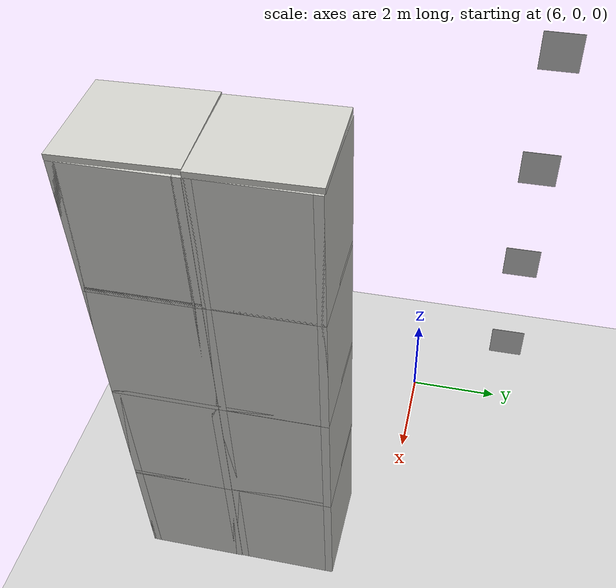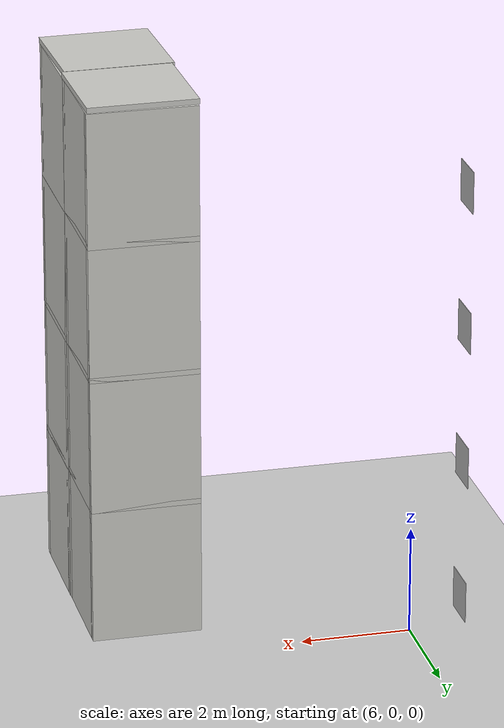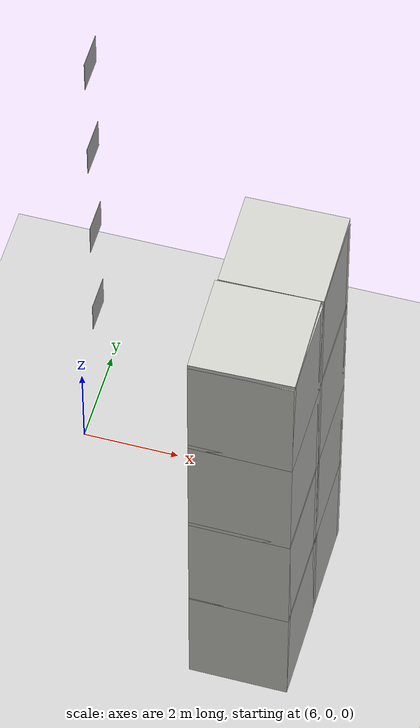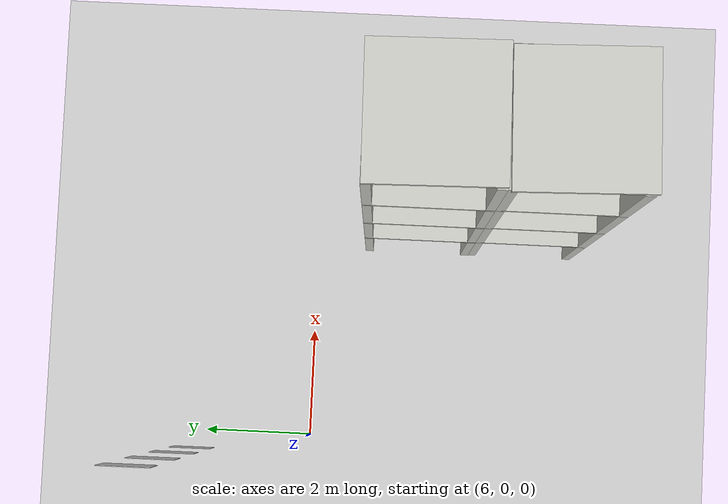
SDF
<sdf version="1.7">
 <world name="default">
  <model name="ground_plane">
   <static>1</static>
   <link name="link">
    <collision name="collision">
     <geometry><plane><normal>0 0 1</normal><size>100 100</size></plane></geometry>
     <surface>
      <contact><collide_bitmask>65535</collide_bitmask></contact>
      <friction><ode><mu>100</mu><mu2>50</mu2></ode></friction>
     </surface>
    </collision>
    <visual name="visual">
     <cast_shadows>0</cast_shadows>
     <geometry><plane><normal>0 0 1</normal><size>100 100</size></plane></geometry>
     <material>
      <script><uri>file://media/materials/scripts/gazebo.material</uri><name>Gazebo/Grey</name></script>
     </material>
    </visual>
   </link>
  </model>
  <model name="twin_4th_building_clone_clone_0">
   <link name="Floor_1">
    <pose>-1.9225 -0.6325 2.5 0 -0 0</pose>
    <visual name="Floor_1_Visual">
     <pose>0 0 0.05 0 -0 0</pose>
     <geometry><box><size>2 2 0.1</size></box></geometry>
     <material>
      <script><uri>file://media/materials/scripts/gazebo.material</uri><name>Gazebo/CeilingTiled</name></script>
      <ambient>1 1 1 1</ambient>
      <shader type="pixel"/>
      <emissive>0 0 0 1</emissive>
     </material>
     <meta><layer>1</layer></meta>
    </visual>
    <collision name="Floor_1_Collision">
     <pose>0 0 0.05 0 -0 0</pose>
     <geometry><box><size>2 2 0.1</size></box></geometry>
     <surface>
      <friction>
       <ode><mu>1</mu><mu2>1</mu2><fdir1>0 0 0</fdir1><slip1>0</slip1><slip2>0</slip2></ode>
       <torsional>
        <coefficient>1</coefficient>
        <patch_radius>0</patch_radius>
        <surface_radius>0</surface_radius>
        <use_patch_radius>1</use_patch_radius>
        <ode><slip>0</slip></ode>
       </torsional>
      </friction>
      <bounce><restitution_coefficient>0</restitution_coefficient><threshold>1e+06</threshold></bounce>
      <contact>
       <collide_without_contact>0</collide_without_contact>
       <collide_without_contact_bitmask>1</collide_without_contact_bitmask>
       <collide_bitmask>1</collide_bitmask>
       <ode>
        <soft_cfm>0</soft_cfm>
        <soft_erp>0.2</soft_erp>
        <kp>1e+13</kp>
        <kd>1</kd>
        <max_vel>0.01</max_vel>
        <min_depth>0</min_depth>
       </ode>
       <bullet>
        <split_impulse>1</split_impulse>
        <split_impulse_penetration_threshold>-0.01</split_impulse_penetration_threshold>
        <soft_cfm>0</soft_cfm>
        <soft_erp>0.2</soft_erp>
        <kp>1e+13</kp>
        <kd>1</kd>
       </bullet>
      </contact>
     </surface>
    </collision>
   </link>
   <link name="Floor_10">
    <pose>-1.9225 -0.6325 7.5 0 -0 0</pose>
    <visual name="Floor_10_Visual">
     <pose>0 0 0.05 0 -0 0</pose>
     <geometry><box><size>2 2 0.1</size></box></geometry>
     <material>
      <script><uri>file://media/materials/scripts/gazebo.material</uri><name>Gazebo/CeilingTiled</name></script>
      <ambient>1 1 1 1</ambient>
      <shader type="pixel"/>
      <emissive>0 0 0 1</emissive>
     </material>
     <meta><layer>3</layer></meta>
    </visual>
    <collision name="Floor_10_Collision">
     <pose>0 0 0.05 0 -0 0</pose>
     <geometry><box><size>2 2 0.1</size></box></geometry>
     <surface>
      <friction>
       <ode><mu>1</mu><mu2>1</mu2><fdir1>0 0 0</fdir1><slip1>0</slip1><slip2>0</slip2></ode>
       <torsional>
        <coefficient>1</coefficient>
        <patch_radius>0</patch_radius>
        <surface_radius>0</surface_radius>
        <use_patch_radius>1</use_patch_radius>
        <ode><slip>0</slip></ode>
       </torsional>
      </friction>
      <bounce><restitution_coefficient>0</restitution_coefficient><threshold>1e+06</threshold></bounce>
      <contact>
       <collide_without_contact>0</collide_without_contact>
       <collide_without_contact_bitmask>1</collide_without_contact_bitmask>
       <collide_bitmask>1</collide_bitmask>
       <ode>
        <soft_cfm>0</soft_cfm>
        <soft_erp>0.2</soft_erp>
        <kp>1e+13</kp>
        <kd>1</kd>
        <max_vel>0.01</max_vel>
        <min_depth>0</min_depth>
       </ode>
       <bullet>
        <split_impulse>1</split_impulse>
        <split_impulse_penetration_threshold>-0.01</split_impulse_penetration_threshold>
        <soft_cfm>0</soft_cfm>
        <soft_erp>0.2</soft_erp>
        <kp>1e+13</kp>
        <kd>1</kd>
       </bullet>
      </contact>
     </surface>
    </collision>
   </link>
   <link name="Floor_10_clone">
    <pose>-1.91647 -0.637292 10.0203 0 0 -1.55375</pose>
    <visual name="Floor_10_Visual">
     <pose>0 0 0.05 0 -0 0</pose>
     <geometry><box><size>2 2 0.1</size></box></geometry>
     <material>
      <script><uri>file://media/materials/scripts/gazebo.material</uri><name>Gazebo/CeilingTiled</name></script>
      <ambient>1 1 1 1</ambient>
      <shader type="pixel"/>
      <emissive>0 0 0 1</emissive>
     </material>
     <meta><layer>3</layer></meta>
    </visual>
    <collision name="Floor_10_Collision">
     <pose>0 0 0.05 0 -0 0</pose>
     <geometry><box><size>2 2 0.1</size></box></geometry>
     <surface>
      <friction>
       <ode><mu>1</mu><mu2>1</mu2><fdir1>0 0 0</fdir1><slip1>0</slip1><slip2>0</slip2></ode>
       <torsional>
        <coefficient>1</coefficient>
        <patch_radius>0</patch_radius>
        <surface_radius>0</surface_radius>
        <use_patch_radius>1</use_patch_radius>
        <ode><slip>0</slip></ode>
       </torsional>
      </friction>
      <bounce><restitution_coefficient>0</restitution_coefficient><threshold>1e+06</threshold></bounce>
      <contact>
       <collide_without_contact>0</collide_without_contact>
       <collide_without_contact_bitmask>1</collide_without_contact_bitmask>
       <collide_bitmask>1</collide_bitmask>
       <ode>
        <soft_cfm>0</soft_cfm>
        <soft_erp>0.2</soft_erp>
        <kp>1e+13</kp>
        <kd>1</kd>
        <max_vel>0.01</max_vel>
        <min_depth>0</min_depth>
       </ode>
       <bullet>
        <split_impulse>1</split_impulse>
        <split_impulse_penetration_threshold>-0.01</split_impulse_penetration_threshold>
        <soft_cfm>0</soft_cfm>
        <soft_erp>0.2</soft_erp>
        <kp>1e+13</kp>
        <kd>1</kd>
       </bullet>
      </contact>
     </surface>
    </collision>
   </link>
   <link name="Floor_10_clone_clone">
    <pose>-3.93376 -0.629613 10.0203 0 0 -3.11619</pose>
    <visual name="Floor_10_Visual">
     <pose>0 0 0.05 0 -0 0</pose>
     <geometry><box><size>2 2 0.1</size></box></geometry>
     <material>
      <script><uri>file://media/materials/scripts/gazebo.material</uri><name>Gazebo/CeilingTiled</name></script>
      <ambient>1 1 1 1</ambient>
      <shader type="pixel"/>
      <emissive>0 0 0 1</emissive>
     </material>
     <meta><layer>3</layer></meta>
    </visual>
    <collision name="Floor_10_Collision">
     <pose>0 0 0.05 0 -0 0</pose>
     <geometry><box><size>2 2 0.1</size></box></geometry>
     <surface>
      <friction>
       <ode><mu>1</mu><mu2>1</mu2><fdir1>0 0 0</fdir1><slip1>0</slip1><slip2>0</slip2></ode>
       <torsional>
        <coefficient>1</coefficient>
        <patch_radius>0</patch_radius>
        <surface_radius>0</surface_radius>
        <use_patch_radius>1</use_patch_radius>
        <ode><slip>0</slip></ode>
       </torsional>
      </friction>
      <bounce><restitution_coefficient>0</restitution_coefficient><threshold>1e+06</threshold></bounce>
      <contact>
       <collide_without_contact>0</collide_without_contact>
       <collide_without_contact_bitmask>1</collide_without_contact_bitmask>
       <collide_bitmask>1</collide_bitmask>
       <ode>
        <soft_cfm>0</soft_cfm>
        <soft_erp>0.2</soft_erp>
        <kp>1e+13</kp>
        <kd>1</kd>
        <max_vel>0.01</max_vel>
        <min_depth>0</min_depth>
       </ode>
       <bullet>
        <split_impulse>1</split_impulse>
        <split_impulse_penetration_threshold>-0.01</split_impulse_penetration_threshold>
        <soft_cfm>0</soft_cfm>
        <soft_erp>0.2</soft_erp>
        <kp>1e+13</kp>
        <kd>1</kd>
       </bullet>
      </contact>
     </surface>
    </collision>
   </link>
   <link name="Floor_9">
    <pose>-1.9225 -0.6325 5 0 -0 0</pose>
    <visual name="Floor_9_Visual">
     <pose>0 0 0.05 0 -0 0</pose>
     <geometry><box><size>2 2 0.1</size></box></geometry>
     <material>
      <script><uri>file://media/materials/scripts/gazebo.material</uri><name>Gazebo/CeilingTiled</name></script>
      <ambient>1 1 1 1</ambient>
      <shader type="pixel"/>
      <emissive>0 0 0 1</emissive>
     </material>
     <meta><layer>2</layer></meta>
    </visual>
    <collision name="Floor_9_Collision">
     <pose>0 0 0.05 0 -0 0</pose>
     <geometry><box><size>2 2 0.1</size></box></geometry>
     <surface>
      <friction>
       <ode><mu>1</mu><mu2>1</mu2><fdir1>0 0 0</fdir1><slip1>0</slip1><slip2>0</slip2></ode>
       <torsional>
        <coefficient>1</coefficient>
        <patch_radius>0</patch_radius>
        <surface_radius>0</surface_radius>
        <use_patch_radius>1</use_patch_radius>
        <ode><slip>0</slip></ode>
       </torsional>
      </friction>
      <bounce><restitution_coefficient>0</restitution_coefficient><threshold>1e+06</threshold></bounce>
      <contact>
       <collide_without_contact>0</collide_without_contact>
       <collide_without_contact_bitmask>1</collide_without_contact_bitmask>
       <collide_bitmask>1</collide_bitmask>
       <ode>
        <soft_cfm>0</soft_cfm>
        <soft_erp>0.2</soft_erp>
        <kp>1e+13</kp>
        <kd>1</kd>
        <max_vel>0.01</max_vel>
        <min_depth>0</min_depth>
       </ode>
       <bullet>
        <split_impulse>1</split_impulse>
        <split_impulse_penetration_threshold>-0.01</split_impulse_penetration_threshold>
        <soft_cfm>0</soft_cfm>
        <soft_erp>0.2</soft_erp>
        <kp>1e+13</kp>
        <kd>1</kd>
       </bullet>
      </contact>
     </surface>
    </collision>
   </link>
   <link name="Wall_13">
    <pose>-2.8475 -0.6325 0 0 0 -1.5708</pose>
    <visual name="Wall_13_Visual">
     <pose>0 0 1.25 0 -0 0</pose>
     <geometry><box><size>2 0.15 2.5</size></box></geometry>
     <material>
      <script><uri>file://media/materials/scripts/gazebo.material</uri><name>Gazebo/CeilingTiled</name></script>
      <ambient>1 1 1 1</ambient>
      <shader type="pixel"/>
      <emissive>0 0 0 1</emissive>
     </material>
     <meta><layer>0</layer></meta>
    </visual>
    <collision name="Wall_13_Collision">
     <pose>0 0 1.25 0 -0 0</pose>
     <geometry><box><size>2 0.15 2.5</size></box></geometry>
     <surface>
      <friction>
       <ode><mu>1</mu><mu2>1</mu2><fdir1>0 0 0</fdir1><slip1>0</slip1><slip2>0</slip2></ode>
       <torsional>
        <coefficient>1</coefficient>
        <patch_radius>0</patch_radius>
        <surface_radius>0</surface_radius>
        <use_patch_radius>1</use_patch_radius>
        <ode><slip>0</slip></ode>
       </torsional>
      </friction>
      <bounce><restitution_coefficient>0</restitution_coefficient><threshold>1e+06</threshold></bounce>
      <contact>
       <collide_without_contact>0</collide_without_contact>
       <collide_without_contact_bitmask>1</collide_without_contact_bitmask>
       <collide_bitmask>1</collide_bitmask>
       <ode>
        <soft_cfm>0</soft_cfm>
        <soft_erp>0.2</soft_erp>
        <kp>1e+13</kp>
        <kd>1</kd>
        <max_vel>0.01</max_vel>
        <min_depth>0</min_depth>
       </ode>
       <bullet>
        <split_impulse>1</split_impulse>
        <split_impulse_penetration_threshold>-0.01</split_impulse_penetration_threshold>
        <soft_cfm>0</soft_cfm>
        <soft_erp>0.2</soft_erp>
        <kp>1e+13</kp>
        <kd>1</kd>
       </bullet>
      </contact>
     </surface>
    </collision>
   </link>
   <link name="Wall_14">
    <pose>-1.9225 -1.5575 0 0 -0 0</pose>
    <visual name="Wall_14_Visual">
     <pose>0 0 1.25 0 -0 0</pose>
     <geometry><box><size>2 0.15 2.5</size></box></geometry>
     <material>
      <script><uri>file://media/materials/scripts/gazebo.material</uri><name>Gazebo/CeilingTiled</name></script>
      <ambient>1 1 1 1</ambient>
      <shader type="pixel"/>
     </material>
     <meta><layer>0</layer></meta>
    </visual>
    <collision name="Wall_14_Collision">
     <pose>0 0 1.25 0 -0 0</pose>
     <geometry><box><size>2 0.15 2.5</size></box></geometry>
     <surface>
      <friction>
       <ode><mu>1</mu><mu2>1</mu2><fdir1>0 0 0</fdir1><slip1>0</slip1><slip2>0</slip2></ode>
       <torsional>
        <coefficient>1</coefficient>
        <patch_radius>0</patch_radius>
        <surface_radius>0</surface_radius>
        <use_patch_radius>1</use_patch_radius>
        <ode><slip>0</slip></ode>
       </torsional>
      </friction>
      <bounce><restitution_coefficient>0</restitution_coefficient><threshold>1e+06</threshold></bounce>
      <contact>
       <collide_without_contact>0</collide_without_contact>
       <collide_without_contact_bitmask>1</collide_without_contact_bitmask>
       <collide_bitmask>1</collide_bitmask>
       <ode>
        <soft_cfm>0</soft_cfm>
        <soft_erp>0.2</soft_erp>
        <kp>1e+13</kp>
        <kd>1</kd>
        <max_vel>0.01</max_vel>
        <min_depth>0</min_depth>
       </ode>
       <bullet>
        <split_impulse>1</split_impulse>
        <split_impulse_penetration_threshold>-0.01</split_impulse_penetration_threshold>
        <soft_cfm>0</soft_cfm>
        <soft_erp>0.2</soft_erp>
        <kp>1e+13</kp>
        <kd>1</kd>
       </bullet>
      </contact>
     </surface>
    </collision>
   </link>
   <link name="Wall_15">
    <pose>-0.9975 -0.6325 0 0 -0 1.5708</pose>
    <visual name="Wall_15_Visual">
     <pose>0 0 1.25 0 -0 0</pose>
     <geometry><box><size>2 0.15 2.5</size></box></geometry>
     <material>
      <script><uri>file://media/materials/scripts/gazebo.material</uri><name>Gazebo/CeilingTiled</name></script>
      <ambient>1 1 1 1</ambient>
      <shader type="pixel"/>
     </material>
     <meta><layer>0</layer></meta>
    </visual>
    <collision name="Wall_15_Collision">
     <pose>0 0 1.25 0 -0 0</pose>
     <geometry><box><size>2 0.15 2.5</size></box></geometry>
     <surface>
      <friction>
       <ode><mu>1</mu><mu2>1</mu2><fdir1>0 0 0</fdir1><slip1>0</slip1><slip2>0</slip2></ode>
       <torsional>
        <coefficient>1</coefficient>
        <patch_radius>0</patch_radius>
        <surface_radius>0</surface_radius>
        <use_patch_radius>1</use_patch_radius>
        <ode><slip>0</slip></ode>
       </torsional>
      </friction>
      <bounce><restitution_coefficient>0</restitution_coefficient><threshold>1e+06</threshold></bounce>
      <contact>
       <collide_without_contact>0</collide_without_contact>
       <collide_without_contact_bitmask>1</collide_without_contact_bitmask>
       <collide_bitmask>1</collide_bitmask>
       <ode>
        <soft_cfm>0</soft_cfm>
        <soft_erp>0.2</soft_erp>
        <kp>1e+13</kp>
        <kd>1</kd>
        <max_vel>0.01</max_vel>
        <min_depth>0</min_depth>
       </ode>
       <bullet>
        <split_impulse>1</split_impulse>
        <split_impulse_penetration_threshold>-0.01</split_impulse_penetration_threshold>
        <soft_cfm>0</soft_cfm>
        <soft_erp>0.2</soft_erp>
        <kp>1e+13</kp>
        <kd>1</kd>
       </bullet>
      </contact>
     </surface>
    </collision>
   </link>
   <link name="Wall_17">
    <pose>-2.8475 -0.6325 2.5 0 0 -1.5708</pose>
    <visual name="Wall_17_Visual">
     <pose>0 0 1.25 0 -0 0</pose>
     <geometry><box><size>2 0.15 2.5</size></box></geometry>
     <material>
      <script><uri>file://media/materials/scripts/gazebo.material</uri><name>Gazebo/CeilingTiled</name></script>
      <ambient>1 1 1 1</ambient>
      <shader type="pixel"/>
      <emissive>0 0 0 1</emissive>
     </material>
     <meta><layer>1</layer></meta>
    </visual>
    <collision name="Wall_17_Collision">
     <pose>0 0 1.25 0 -0 0</pose>
     <geometry><box><size>2 0.15 2.5</size></box></geometry>
     <surface>
      <friction>
       <ode><mu>1</mu><mu2>1</mu2><fdir1>0 0 0</fdir1><slip1>0</slip1><slip2>0</slip2></ode>
       <torsional>
        <coefficient>1</coefficient>
        <patch_radius>0</patch_radius>
        <surface_radius>0</surface_radius>
        <use_patch_radius>1</use_patch_radius>
        <ode><slip>0</slip></ode>
       </torsional>
      </friction>
      <bounce><restitution_coefficient>0</restitution_coefficient><threshold>1e+06</threshold></bounce>
      <contact>
       <collide_without_contact>0</collide_without_contact>
       <collide_without_contact_bitmask>1</collide_without_contact_bitmask>
       <collide_bitmask>1</collide_bitmask>
       <ode>
        <soft_cfm>0</soft_cfm>
        <soft_erp>0.2</soft_erp>
        <kp>1e+13</kp>
        <kd>1</kd>
        <max_vel>0.01</max_vel>
        <min_depth>0</min_depth>
       </ode>
       <bullet>
        <split_impulse>1</split_impulse>
        <split_impulse_penetration_threshold>-0.01</split_impulse_penetration_threshold>
        <soft_cfm>0</soft_cfm>
        <soft_erp>0.2</soft_erp>
        <kp>1e+13</kp>
        <kd>1</kd>
       </bullet>
      </contact>
     </surface>
    </collision>
   </link>
   <link name="Wall_18">
    <pose>-1.9225 -1.5575 2.5 0 -0 0</pose>
    <visual name="Wall_18_Visual">
     <pose>0 0 1.25 0 -0 0</pose>
     <geometry><box><size>2 0.15 2.5</size></box></geometry>
     <material>
      <script><uri>file://media/materials/scripts/gazebo.material</uri><name>Gazebo/CeilingTiled</name></script>
      <ambient>1 1 1 1</ambient>
      <shader type="pixel"/>
      <emissive>0 0 0 1</emissive>
     </material>
     <meta><layer>1</layer></meta>
    </visual>
    <collision name="Wall_18_Collision">
     <pose>0 0 1.25 0 -0 0</pose>
     <geometry><box><size>2 0.15 2.5</size></box></geometry>
     <surface>
      <friction>
       <ode><mu>1</mu><mu2>1</mu2><fdir1>0 0 0</fdir1><slip1>0</slip1><slip2>0</slip2></ode>
       <torsional>
        <coefficient>1</coefficient>
        <patch_radius>0</patch_radius>
        <surface_radius>0</surface_radius>
        <use_patch_radius>1</use_patch_radius>
        <ode><slip>0</slip></ode>
       </torsional>
      </friction>
      <bounce><restitution_coefficient>0</restitution_coefficient><threshold>1e+06</threshold></bounce>
      <contact>
       <collide_without_contact>0</collide_without_contact>
       <collide_without_contact_bitmask>1</collide_without_contact_bitmask>
       <collide_bitmask>1</collide_bitmask>
       <ode>
        <soft_cfm>0</soft_cfm>
        <soft_erp>0.2</soft_erp>
        <kp>1e+13</kp>
        <kd>1</kd>
        <max_vel>0.01</max_vel>
        <min_depth>0</min_depth>
       </ode>
       <bullet>
        <split_impulse>1</split_impulse>
        <split_impulse_penetration_threshold>-0.01</split_impulse_penetration_threshold>
        <soft_cfm>0</soft_cfm>
        <soft_erp>0.2</soft_erp>
        <kp>1e+13</kp>
        <kd>1</kd>
       </bullet>
      </contact>
     </surface>
    </collision>
   </link>
   <link name="Wall_19">
    <pose>-0.9975 -0.6325 2.5 0 -0 1.5708</pose>
    <visual name="Wall_19_Visual">
     <pose>0 0 1.25 0 -0 0</pose>
     <geometry><box><size>2 0.15 2.5</size></box></geometry>
     <material>
      <script><uri>file://media/materials/scripts/gazebo.material</uri><name>Gazebo/CeilingTiled</name></script>
      <ambient>1 1 1 1</ambient>
      <shader type="pixel"/>
     </material>
     <meta><layer>1</layer></meta>
    </visual>
    <collision name="Wall_19_Collision">
     <pose>0 0 1.25 0 -0 0</pose>
     <geometry><box><size>2 0.15 2.5</size></box></geometry>
     <surface>
      <friction>
       <ode><mu>1</mu><mu2>1</mu2><fdir1>0 0 0</fdir1><slip1>0</slip1><slip2>0</slip2></ode>
       <torsional>
        <coefficient>1</coefficient>
        <patch_radius>0</patch_radius>
        <surface_radius>0</surface_radius>
        <use_patch_radius>1</use_patch_radius>
        <ode><slip>0</slip></ode>
       </torsional>
      </friction>
      <bounce><restitution_coefficient>0</restitution_coefficient><threshold>1e+06</threshold></bounce>
      <contact>
       <collide_without_contact>0</collide_without_contact>
       <collide_without_contact_bitmask>1</collide_without_contact_bitmask>
       <collide_bitmask>1</collide_bitmask>
       <ode>
        <soft_cfm>0</soft_cfm>
        <soft_erp>0.2</soft_erp>
        <kp>1e+13</kp>
        <kd>1</kd>
        <max_vel>0.01</max_vel>
        <min_depth>0</min_depth>
       </ode>
       <bullet>
        <split_impulse>1</split_impulse>
        <split_impulse_penetration_threshold>-0.01</split_impulse_penetration_threshold>
        <soft_cfm>0</soft_cfm>
        <soft_erp>0.2</soft_erp>
        <kp>1e+13</kp>
        <kd>1</kd>
       </bullet>
      </contact>
     </surface>
    </collision>
   </link>
   <link name="Wall_40">
    <pose>-2.8475 -0.6325 5 0 0 -1.5708</pose>
    <visual name="Wall_40_Visual">
     <pose>0 0 1.25 0 -0 0</pose>
     <geometry><box><size>2 0.15 2.5</size></box></geometry>
     <material>
      <script><uri>file://media/materials/scripts/gazebo.material</uri><name>Gazebo/CeilingTiled</name></script>
      <ambient>1 1 1 1</ambient>
      <shader type="pixel"/>
      <emissive>0 0 0 1</emissive>
     </material>
     <meta><layer>2</layer></meta>
    </visual>
    <collision name="Wall_40_Collision">
     <pose>0 0 1.25 0 -0 0</pose>
     <geometry><box><size>2 0.15 2.5</size></box></geometry>
     <surface>
      <friction>
       <ode><mu>1</mu><mu2>1</mu2><fdir1>0 0 0</fdir1><slip1>0</slip1><slip2>0</slip2></ode>
       <torsional>
        <coefficient>1</coefficient>
        <patch_radius>0</patch_radius>
        <surface_radius>0</surface_radius>
        <use_patch_radius>1</use_patch_radius>
        <ode><slip>0</slip></ode>
       </torsional>
      </friction>
      <bounce><restitution_coefficient>0</restitution_coefficient><threshold>1e+06</threshold></bounce>
      <contact>
       <collide_without_contact>0</collide_without_contact>
       <collide_without_contact_bitmask>1</collide_without_contact_bitmask>
       <collide_bitmask>1</collide_bitmask>
       <ode>
        <soft_cfm>0</soft_cfm>
        <soft_erp>0.2</soft_erp>
        <kp>1e+13</kp>
        <kd>1</kd>
        <max_vel>0.01</max_vel>
        <min_depth>0</min_depth>
       </ode>
       <bullet>
        <split_impulse>1</split_impulse>
        <split_impulse_penetration_threshold>-0.01</split_impulse_penetration_threshold>
        <soft_cfm>0</soft_cfm>
        <soft_erp>0.2</soft_erp>
        <kp>1e+13</kp>
        <kd>1</kd>
       </bullet>
      </contact>
     </surface>
    </collision>
   </link>
   <link name="Wall_41">
    <pose>-1.9225 -1.5575 5 0 -0 0</pose>
    <visual name="Wall_41_Visual">
     <pose>0 0 1.25 0 -0 0</pose>
     <geometry><box><size>2 0.15 2.5</size></box></geometry>
     <material>
      <script><uri>file://media/materials/scripts/gazebo.material</uri><name>Gazebo/CeilingTiled</name></script>
      <ambient>1 1 1 1</ambient>
      <shader type="pixel"/>
      <emissive>0 0 0 1</emissive>
     </material>
     <meta><layer>2</layer></meta>
    </visual>
    <collision name="Wall_41_Collision">
     <pose>0 0 1.25 0 -0 0</pose>
     <geometry><box><size>2 0.15 2.5</size></box></geometry>
     <surface>
      <friction>
       <ode><mu>1</mu><mu2>1</mu2><fdir1>0 0 0</fdir1><slip1>0</slip1><slip2>0</slip2></ode>
       <torsional>
        <coefficient>1</coefficient>
        <patch_radius>0</patch_radius>
        <surface_radius>0</surface_radius>
        <use_patch_radius>1</use_patch_radius>
        <ode><slip>0</slip></ode>
       </torsional>
      </friction>
      <bounce><restitution_coefficient>0</restitution_coefficient><threshold>1e+06</threshold></bounce>
      <contact>
       <collide_without_contact>0</collide_without_contact>
       <collide_without_contact_bitmask>1</collide_without_contact_bitmask>
       <collide_bitmask>1</collide_bitmask>
       <ode>
        <soft_cfm>0</soft_cfm>
        <soft_erp>0.2</soft_erp>
        <kp>1e+13</kp>
        <kd>1</kd>
        <max_vel>0.01</max_vel>
        <min_depth>0</min_depth>
       </ode>
       <bullet>
        <split_impulse>1</split_impulse>
        <split_impulse_penetration_threshold>-0.01</split_impulse_penetration_threshold>
        <soft_cfm>0</soft_cfm>
        <soft_erp>0.2</soft_erp>
        <kp>1e+13</kp>
        <kd>1</kd>
       </bullet>
      </contact>
     </surface>
    </collision>
   </link>
   <link name="Wall_42">
    <pose>-0.9975 -0.6325 5 0 -0 1.5708</pose>
    <visual name="Wall_42_Visual">
     <pose>0 0 1.25 0 -0 0</pose>
     <geometry><box><size>2 0.15 2.5</size></box></geometry>
     <material>
      <script><uri>file://media/materials/scripts/gazebo.material</uri><name>Gazebo/CeilingTiled</name></script>
      <ambient>1 1 1 1</ambient>
      <shader type="pixel"/>
     </material>
     <meta><layer>2</layer></meta>
    </visual>
    <collision name="Wall_42_Collision">
     <pose>0 0 1.25 0 -0 0</pose>
     <geometry><box><size>2 0.15 2.5</size></box></geometry>
     <surface>
      <friction>
       <ode><mu>1</mu><mu2>1</mu2><fdir1>0 0 0</fdir1><slip1>0</slip1><slip2>0</slip2></ode>
       <torsional>
        <coefficient>1</coefficient>
        <patch_radius>0</patch_radius>
        <surface_radius>0</surface_radius>
        <use_patch_radius>1</use_patch_radius>
        <ode><slip>0</slip></ode>
       </torsional>
      </friction>
      <bounce><restitution_coefficient>0</restitution_coefficient><threshold>1e+06</threshold></bounce>
      <contact>
       <collide_without_contact>0</collide_without_contact>
       <collide_without_contact_bitmask>1</collide_without_contact_bitmask>
       <collide_bitmask>1</collide_bitmask>
       <ode>
        <soft_cfm>0</soft_cfm>
        <soft_erp>0.2</soft_erp>
        <kp>1e+13</kp>
        <kd>1</kd>
        <max_vel>0.01</max_vel>
        <min_depth>0</min_depth>
       </ode>
       <bullet>
        <split_impulse>1</split_impulse>
        <split_impulse_penetration_threshold>-0.01</split_impulse_penetration_threshold>
        <soft_cfm>0</soft_cfm>
        <soft_erp>0.2</soft_erp>
        <kp>1e+13</kp>
        <kd>1</kd>
       </bullet>
      </contact>
     </surface>
    </collision>
   </link>
   <link name="Wall_43">
    <pose>-2.8475 -0.6325 7.5 0 0 -1.5708</pose>
    <visual name="Wall_43_Visual">
     <pose>0 0 1.25 0 -0 0</pose>
     <geometry><box><size>2 0.15 2.5</size></box></geometry>
     <material>
      <script><uri>file://media/materials/scripts/gazebo.material</uri><name>Gazebo/CeilingTiled</name></script>
      <ambient>1 1 1 1</ambient>
      <shader type="pixel"/>
      <emissive>0 0 0 1</emissive>
     </material>
     <meta><layer>3</layer></meta>
    </visual>
    <collision name="Wall_43_Collision">
     <pose>0 0 1.25 0 -0 0</pose>
     <geometry><box><size>2 0.15 2.5</size></box></geometry>
     <surface>
      <friction>
       <ode><mu>1</mu><mu2>1</mu2><fdir1>0 0 0</fdir1><slip1>0</slip1><slip2>0</slip2></ode>
       <torsional>
        <coefficient>1</coefficient>
        <patch_radius>0</patch_radius>
        <surface_radius>0</surface_radius>
        <use_patch_radius>1</use_patch_radius>
        <ode><slip>0</slip></ode>
       </torsional>
      </friction>
      <bounce><restitution_coefficient>0</restitution_coefficient><threshold>1e+06</threshold></bounce>
      <contact>
       <collide_without_contact>0</collide_without_contact>
       <collide_without_contact_bitmask>1</collide_without_contact_bitmask>
       <collide_bitmask>1</collide_bitmask>
       <ode>
        <soft_cfm>0</soft_cfm>
        <soft_erp>0.2</soft_erp>
        <kp>1e+13</kp>
        <kd>1</kd>
        <max_vel>0.01</max_vel>
        <min_depth>0</min_depth>
       </ode>
       <bullet>
        <split_impulse>1</split_impulse>
        <split_impulse_penetration_threshold>-0.01</split_impulse_penetration_threshold>
        <soft_cfm>0</soft_cfm>
        <soft_erp>0.2</soft_erp>
        <kp>1e+13</kp>
        <kd>1</kd>
       </bullet>
      </contact>
     </surface>
    </collision>
   </link>
   <link name="Wall_44">
    <pose>-1.9225 -1.5575 7.5 0 -0 0</pose>
    <visual name="Wall_44_Visual">
     <pose>0 0 1.25 0 -0 0</pose>
     <geometry><box><size>2 0.15 2.5</size></box></geometry>
     <material>
      <script><uri>file://media/materials/scripts/gazebo.material</uri><name>Gazebo/CeilingTiled</name></script>
      <ambient>1 1 1 1</ambient>
      <shader type="pixel"/>
      <emissive>0 0 0 1</emissive>
     </material>
     <meta><layer>3</layer></meta>
    </visual>
    <collision name="Wall_44_Collision">
     <pose>0 0 1.25 0 -0 0</pose>
     <geometry><box><size>2 0.15 2.5</size></box></geometry>
     <surface>
      <friction>
       <ode><mu>1</mu><mu2>1</mu2><fdir1>0 0 0</fdir1><slip1>0</slip1><slip2>0</slip2></ode>
       <torsional>
        <coefficient>1</coefficient>
        <patch_radius>0</patch_radius>
        <surface_radius>0</surface_radius>
        <use_patch_radius>1</use_patch_radius>
        <ode><slip>0</slip></ode>
       </torsional>
      </friction>
      <bounce><restitution_coefficient>0</restitution_coefficient><threshold>1e+06</threshold></bounce>
      <contact>
       <collide_without_contact>0</collide_without_contact>
       <collide_without_contact_bitmask>1</collide_without_contact_bitmask>
       <collide_bitmask>1</collide_bitmask>
       <ode>
        <soft_cfm>0</soft_cfm>
        <soft_erp>0.2</soft_erp>
        <kp>1e+13</kp>
        <kd>1</kd>
        <max_vel>0.01</max_vel>
        <min_depth>0</min_depth>
       </ode>
       <bullet>
        <split_impulse>1</split_impulse>
        <split_impulse_penetration_threshold>-0.01</split_impulse_penetration_threshold>
        <soft_cfm>0</soft_cfm>
        <soft_erp>0.2</soft_erp>
        <kp>1e+13</kp>
        <kd>1</kd>
       </bullet>
      </contact>
     </surface>
    </collision>
   </link>
   <link name="Wall_45">
    <pose>-0.9975 -0.6325 7.5 0 -0 1.5708</pose>
    <visual name="Wall_45_Visual">
     <pose>0 0 1.25 0 -0 0</pose>
     <geometry><box><size>2 0.15 2.5</size></box></geometry>
     <material>
      <script><uri>file://media/materials/scripts/gazebo.material</uri><name>Gazebo/CeilingTiled</name></script>
      <ambient>1 1 1 1</ambient>
      <shader type="pixel"/>
     </material>
     <meta><layer>3</layer></meta>
    </visual>
    <collision name="Wall_45_Collision">
     <pose>0 0 1.25 0 -0 0</pose>
     <geometry><box><size>2 0.15 2.5</size></box></geometry>
     <surface>
      <friction>
       <ode><mu>1</mu><mu2>1</mu2><fdir1>0 0 0</fdir1><slip1>0</slip1><slip2>0</slip2></ode>
       <torsional>
        <coefficient>1</coefficient>
        <patch_radius>0</patch_radius>
        <surface_radius>0</surface_radius>
        <use_patch_radius>1</use_patch_radius>
        <ode><slip>0</slip></ode>
       </torsional>
      </friction>
      <bounce><restitution_coefficient>0</restitution_coefficient><threshold>1e+06</threshold></bounce>
      <contact>
       <collide_without_contact>0</collide_without_contact>
       <collide_without_contact_bitmask>1</collide_without_contact_bitmask>
       <collide_bitmask>1</collide_bitmask>
       <ode>
        <soft_cfm>0</soft_cfm>
        <soft_erp>0.2</soft_erp>
        <kp>1e+13</kp>
        <kd>1</kd>
        <max_vel>0.01</max_vel>
        <min_depth>0</min_depth>
       </ode>
       <bullet>
        <split_impulse>1</split_impulse>
        <split_impulse_penetration_threshold>-0.01</split_impulse_penetration_threshold>
        <soft_cfm>0</soft_cfm>
        <soft_erp>0.2</soft_erp>
        <kp>1e+13</kp>
        <kd>1</kd>
       </bullet>
      </contact>
     </surface>
    </collision>
   </link>
   <model name="4th_building">
    <pose>-1.99386 -0.00682 0 0 -0 0</pose>
    <link name="Floor_1">
     <collision name="Floor_1_Collision">
      <geometry><box><size>2 2 0.1</size></box></geometry>
      <pose>0 0 0.05 0 -0 0</pose>
     </collision>
     <visual name="Floor_1_Visual">
      <pose>0 0 0.05 0 -0 0</pose>
      <geometry><box><size>2 2 0.1</size></box></geometry>
      <material>
       <script><uri>file://media/materials/scripts/gazebo.material</uri><name>Gazebo/CeilingTiled</name></script>
       <ambient>1 1 1 1</ambient>
      </material>
      <meta><layer>1</layer></meta>
     </visual>
     <pose>-1.9225 -0.6325 2.5 0 -0 0</pose>
    </link>
    <link name="Floor_10">
     <collision name="Floor_10_Collision">
      <geometry><box><size>2 2 0.1</size></box></geometry>
      <pose>0 0 0.05 0 -0 0</pose>
     </collision>
     <visual name="Floor_10_Visual">
      <pose>0 0 0.05 0 -0 0</pose>
      <geometry><box><size>2 2 0.1</size></box></geometry>
      <material>
       <script><uri>file://media/materials/scripts/gazebo.material</uri><name>Gazebo/CeilingTiled</name></script>
       <ambient>1 1 1 1</ambient>
      </material>
      <meta><layer>3</layer></meta>
     </visual>
     <pose>-1.9225 -0.6325 7.5 0 -0 0</pose>
    </link>
    <link name="Floor_9">
     <collision name="Floor_9_Collision">
      <geometry><box><size>2 2 0.1</size></box></geometry>
      <pose>0 0 0.05 0 -0 0</pose>
     </collision>
     <visual name="Floor_9_Visual">
      <pose>0 0 0.05 0 -0 0</pose>
      <geometry><box><size>2 2 0.1</size></box></geometry>
      <material>
       <script><uri>file://media/materials/scripts/gazebo.material</uri><name>Gazebo/CeilingTiled</name></script>
       <ambient>1 1 1 1</ambient>
      </material>
      <meta><layer>2</layer></meta>
     </visual>
     <pose>-1.9225 -0.6325 5 0 -0 0</pose>
    </link>
    <link name="Wall_13">
     <collision name="Wall_13_Collision">
      <geometry><box><size>2 0.15 2.5</size></box></geometry>
      <pose>0 0 1.25 0 -0 0</pose>
     </collision>
     <visual name="Wall_13_Visual">
      <pose>0 0 1.25 0 -0 0</pose>
      <geometry><box><size>2 0.15 2.5</size></box></geometry>
      <material>
       <script><uri>file://media/materials/scripts/gazebo.material</uri><name>Gazebo/CeilingTiled</name></script>
       <ambient>1 1 1 1</ambient>
      </material>
      <meta><layer>0</layer></meta>
     </visual>
     <pose>-2.8475 -0.6325 0 0 -0 -1.5708</pose>
    </link>
    <link name="Wall_14">
     <collision name="Wall_14_Collision">
      <geometry><box><size>2 0.15 2.5</size></box></geometry>
      <pose>0 0 1.25 0 -0 0</pose>
     </collision>
     <visual name="Wall_14_Visual">
      <pose>0 0 1.25 0 -0 0</pose>
      <geometry><box><size>2 0.15 2.5</size></box></geometry>
      <material>
       <script><uri>file://media/materials/scripts/gazebo.material</uri><name>Gazebo/CeilingTiled</name></script>
       <ambient>1 1 1 1</ambient>
      </material>
      <meta><layer>0</layer></meta>
     </visual>
     <pose>-1.9225 -1.5575 0 0 -0 0</pose>
    </link>
    <link name="Wall_15">
     <collision name="Wall_15_Collision">
      <geometry><box><size>2 0.15 2.5</size></box></geometry>
      <pose>0 0 1.25 0 -0 0</pose>
     </collision>
     <visual name="Wall_15_Visual">
      <pose>0 0 1.25 0 -0 0</pose>
      <geometry><box><size>2 0.15 2.5</size></box></geometry>
      <material>
       <script><uri>file://media/materials/scripts/gazebo.material</uri><name>Gazebo/CeilingTiled</name></script>
       <ambient>1 1 1 1</ambient>
      </material>
      <meta><layer>0</layer></meta>
     </visual>
     <pose>-0.9975 -0.6325 0 0 -0 1.5708</pose>
    </link>
    <link name="Wall_17">
     <collision name="Wall_17_Collision">
      <geometry><box><size>2 0.15 2.5</size></box></geometry>
      <pose>0 0 1.25 0 -0 0</pose>
     </collision>
     <visual name="Wall_17_Visual">
      <pose>0 0 1.25 0 -0 0</pose>
      <geometry><box><size>2 0.15 2.5</size></box></geometry>
      <material>
       <script><uri>file://media/materials/scripts/gazebo.material</uri><name>Gazebo/CeilingTiled</name></script>
       <ambient>1 1 1 1</ambient>
      </material>
      <meta><layer>1</layer></meta>
     </visual>
     <pose>-2.8475 -0.6325 2.5 0 -0 -1.5708</pose>
    </link>
    <link name="Wall_18">
     <collision name="Wall_18_Collision">
      <geometry><box><size>2 0.15 2.5</size></box></geometry>
      <pose>0 0 1.25 0 -0 0</pose>
     </collision>
     <visual name="Wall_18_Visual">
      <pose>0 0 1.25 0 -0 0</pose>
      <geometry><box><size>2 0.15 2.5</size></box></geometry>
      <material>
       <script><uri>file://media/materials/scripts/gazebo.material</uri><name>Gazebo/CeilingTiled</name></script>
       <ambient>1 1 1 1</ambient>
      </material>
      <meta><layer>1</layer></meta>
     </visual>
     <pose>-1.9225 -1.5575 2.5 0 -0 0</pose>
    </link>
    <link name="Wall_19">
     <collision name="Wall_19_Collision">
      <geometry><box><size>2 0.15 2.5</size></box></geometry>
      <pose>0 0 1.25 0 -0 0</pose>
     </collision>
     <visual name="Wall_19_Visual">
      <pose>0 0 1.25 0 -0 0</pose>
      <geometry><box><size>2 0.15 2.5</size></box></geometry>
      <material>
       <script><uri>file://media/materials/scripts/gazebo.material</uri><name>Gazebo/CeilingTiled</name></script>
       <ambient>1 1 1 1</ambient>
      </material>
      <meta><layer>1</layer></meta>
     </visual>
     <pose>-0.9975 -0.6325 2.5 0 -0 1.5708</pose>
    </link>
    <link name="Wall_40">
     <collision name="Wall_40_Collision">
      <geometry><box><size>2 0.15 2.5</size></box></geometry>
      <pose>0 0 1.25 0 -0 0</pose>
     </collision>
     <visual name="Wall_40_Visual">
      <pose>0 0 1.25 0 -0 0</pose>
      <geometry><box><size>2 0.15 2.5</size></box></geometry>
      <material>
       <script><uri>file://media/materials/scripts/gazebo.material</uri><name>Gazebo/CeilingTiled</name></script>
       <ambient>1 1 1 1</ambient>
      </material>
      <meta><layer>2</layer></meta>
     </visual>
     <pose>-2.8475 -0.6325 5 0 -0 -1.5708</pose>
    </link>
    <link name="Wall_41">
     <collision name="Wall_41_Collision">
      <geometry><box><size>2 0.15 2.5</size></box></geometry>
      <pose>0 0 1.25 0 -0 0</pose>
     </collision>
     <visual name="Wall_41_Visual">
      <pose>0 0 1.25 0 -0 0</pose>
      <geometry><box><size>2 0.15 2.5</size></box></geometry>
      <material>
       <script><uri>file://media/materials/scripts/gazebo.material</uri><name>Gazebo/CeilingTiled</name></script>
       <ambient>1 1 1 1</ambient>
      </material>
      <meta><layer>2</layer></meta>
     </visual>
     <pose>-1.9225 -1.5575 5 0 -0 0</pose>
    </link>
    <link name="Wall_42">
     <collision name="Wall_42_Collision">
      <geometry><box><size>2 0.15 2.5</size></box></geometry>
      <pose>0 0 1.25 0 -0 0</pose>
     </collision>
     <visual name="Wall_42_Visual">
      <pose>0 0 1.25 0 -0 0</pose>
      <geometry><box><size>2 0.15 2.5</size></box></geometry>
      <material>
       <script><uri>file://media/materials/scripts/gazebo.material</uri><name>Gazebo/CeilingTiled</name></script>
       <ambient>1 1 1 1</ambient>
      </material>
      <meta><layer>2</layer></meta>
     </visual>
     <pose>-0.9975 -0.6325 5 0 -0 1.5708</pose>
    </link>
    <link name="Wall_43">
     <collision name="Wall_43_Collision">
      <geometry><box><size>2 0.15 2.5</size></box></geometry>
      <pose>0 0 1.25 0 -0 0</pose>
     </collision>
     <visual name="Wall_43_Visual">
      <pose>0 0 1.25 0 -0 0</pose>
      <geometry><box><size>2 0.15 2.5</size></box></geometry>
      <material>
       <script><uri>file://media/materials/scripts/gazebo.material</uri><name>Gazebo/CeilingTiled</name></script>
       <ambient>1 1 1 1</ambient>
      </material>
      <meta><layer>3</layer></meta>
     </visual>
     <pose>-2.8475 -0.6325 7.5 0 -0 -1.5708</pose>
    </link>
    <link name="Wall_44">
     <collision name="Wall_44_Collision">
      <geometry><box><size>2 0.15 2.5</size></box></geometry>
      <pose>0 0 1.25 0 -0 0</pose>
     </collision>
     <visual name="Wall_44_Visual">
      <pose>0 0 1.25 0 -0 0</pose>
      <geometry><box><size>2 0.15 2.5</size></box></geometry>
      <material>
       <script><uri>file://media/materials/scripts/gazebo.material</uri><name>Gazebo/CeilingTiled</name></script>
       <ambient>1 1 1 1</ambient>
      </material>
      <meta><layer>3</layer></meta>
     </visual>
     <pose>-1.9225 -1.5575 7.5 0 -0 0</pose>
    </link>
    <link name="Wall_45">
     <collision name="Wall_45_Collision">
      <geometry><box><size>2 0.15 2.5</size></box></geometry>
      <pose>0 0 1.25 0 -0 0</pose>
     </collision>
     <visual name="Wall_45_Visual">
      <pose>0 0 1.25 0 -0 0</pose>
      <geometry><box><size>2 0.15 2.5</size></box></geometry>
      <material>
       <script><uri>file://media/materials/scripts/gazebo.material</uri><name>Gazebo/CeilingTiled</name></script>
       <ambient>1 1 1 1</ambient>
      </material>
      <meta><layer>3</layer></meta>
     </visual>
     <pose>-0.9975 -0.6325 7.5 0 -0 1.5708</pose>
    </link>
    <static>1</static>
   </model>
   <joint name="Wall_13_JOINT_4" type="revolute">
    <parent>Wall_13</parent>
    <child>4th_building::Wall_15</child>
    <axis>
     <xyz>1 0 0</xyz>
     <limit>
      <lower>-1.79769e+308</lower>
      <upper>1.79769e+308</upper>
      <effort>-1</effort>
      <velocity>-1</velocity>
     </limit>
     <dynamics>
      <spring_reference>0</spring_reference>
      <spring_stiffness>0</spring_stiffness>
      <damping>0</damping>
      <friction>0</friction>
     </dynamics>
    </axis>
    <physics>
     <ode><limit><cfm>0</cfm><erp>0.2</erp></limit><suspension><cfm>0</cfm><erp>0.2</erp></suspension></ode>
    </physics>
   </joint>
   <joint name="Wall_17_JOINT_3" type="revolute">
    <parent>Wall_17</parent>
    <child>4th_building::Wall_19</child>
    <axis>
     <xyz>1 0 0</xyz>
     <limit>
      <lower>-1.79769e+308</lower>
      <upper>1.79769e+308</upper>
      <effort>-1</effort>
      <velocity>-1</velocity>
     </limit>
     <dynamics>
      <spring_reference>0</spring_reference>
      <spring_stiffness>0</spring_stiffness>
      <damping>0</damping>
      <friction>0</friction>
     </dynamics>
    </axis>
    <physics>
     <ode><limit><cfm>0</cfm><erp>0.2</erp></limit><suspension><cfm>0</cfm><erp>0.2</erp></suspension></ode>
    </physics>
   </joint>
   <joint name="Wall_40_JOINT_2" type="revolute">
    <parent>Wall_40</parent>
    <child>4th_building::Wall_42</child>
    <axis>
     <xyz>1 0 0</xyz>
     <limit>
      <lower>-1.79769e+308</lower>
      <upper>1.79769e+308</upper>
      <effort>-1</effort>
      <velocity>-1</velocity>
     </limit>
     <dynamics>
      <spring_reference>0</spring_reference>
      <spring_stiffness>0</spring_stiffness>
      <damping>0</damping>
      <friction>0</friction>
     </dynamics>
    </axis>
    <physics>
     <ode><limit><cfm>0</cfm><erp>0.2</erp></limit><suspension><cfm>0</cfm><erp>0.2</erp></suspension></ode>
    </physics>
   </joint>
   <joint name="Wall_43_JOINT_1" type="fixed">
    <parent>Wall_43</parent>
    <child>4th_building::Wall_45</child>
    <physics>
     <ode><limit><cfm>0</cfm><erp>0.2</erp></limit><suspension><cfm>0</cfm><erp>0.2</erp></suspension></ode>
    </physics>
   </joint>
   <static>1</static>
   <pose>10 -7e-06 0 0 -0 1.57</pose>
  </model>
  <model name="WayPoint7_prac">
   <static>1</static>
   <link name="link">
    <collision name="collision"><geometry><box><size>0.75 0.01 0.75</size></box></geometry></collision>
    <visual name="visual">
     <geometry><box><size>0.75 0.01 0.75</size></box></geometry>
     <material>
      <script>
       <uri>model://WayPoint7_prac/materials/scripts</uri>
       <uri>model://WayPoint7_prac/materials/textures</uri>
       <name>vrc/WayPoint7_prac</name>
      </script>
     </material>
    </visual>
   </link>
   <pose>5.7 2.1 9.25 0 0 -1.57</pose>
  </model>
  <model name="WayPoint6_prac2">
   <static>1</static>
   <link name="link">
    <collision name="collision"><geometry><box><size>0.75 0.01 0.75</size></box></geometry></collision>
    <visual name="visual">
     <geometry><box><size>0.75 0.01 0.75</size></box></geometry>
     <material>
      <script>
       <uri>model://WayPoint6_prac2/materials/scripts</uri>
       <uri>model://WayPoint6_prac2/materials/textures</uri>
       <name>vrc/WayPoint6_prac2</name>
      </script>
     </material>
    </visual>
   </link>
   <pose>5.7 2.1 4.2 0 0 -1.57</pose>
  </model>
  <model name="WayPoint8_prac">
   <static>1</static>
   <link name="link">
    <collision name="collision"><geometry><box><size>0.75 0.01 0.75</size></box></geometry></collision>
    <visual name="visual">
     <geometry><box><size>0.75 0.01 0.75</size></box></geometry>
     <material>
      <script>
       <uri>model://WayPoint8_prac/materials/scripts</uri>
       <uri>model://WayPoint8_prac/materials/textures</uri>
       <name>vrc/WayPoint8_prac</name>
      </script>
     </material>
    </visual>
   </link>
   <pose>5.7 2.1 1.65 0 0 -1.57</pose>
  </model>
  <model name="WayPoint9_prac2">
   <static>1</static>
   <link name="link">
    <collision name="collision"><geometry><box><size>0.75 0.01 0.75</size></box></geometry></collision>
    <visual name="visual">
     <geometry><box><size>0.75 0.01 0.75</size></box></geometry>
     <material>
      <script>
       <uri>model://WayPoint9_prac2/materials/scripts</uri>
       <uri>model://WayPoint9_prac2/materials/textures</uri>
       <name>vrc/WayPoint9_prac2</name>
      </script>
     </material>
    </visual>
   </link>
   <pose>5.7 2.1 6.7 0 0 -1.57</pose>
  </model>
 </world>
</sdf>
